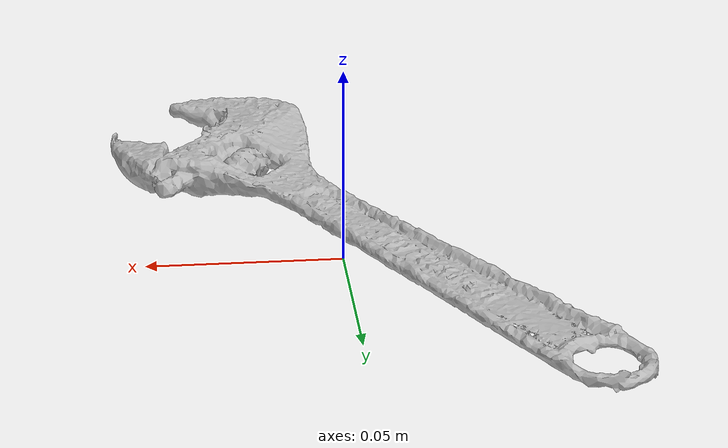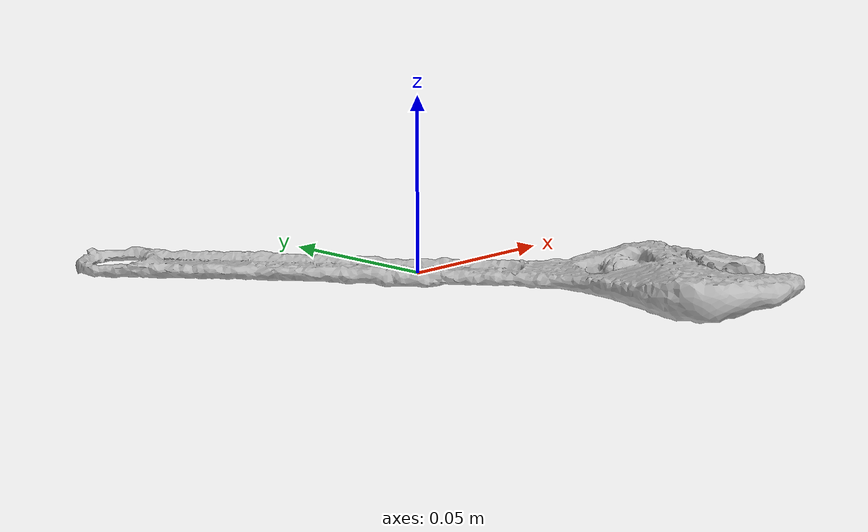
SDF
<?xml version='1.0'?>
<sdf version="1.4">
  <model name="adjustable_wrench">
    <static>false</static>
    <link name="link">
      <inertial>
        <pose>0.01450146241685899 -0.049664842094331994 0.004250780997626008 -2.1210410034214613 -1.5340779965528406 1.05767233743121</pose>
        <mass>1.9821730387476e-05</mass>
        <inertia>
          <ixx>4.68812164277712e-08</ixx>
          <ixy>-9.127291778619243e-25</ixy>
          <ixz>-1.3817253032961068e-24</ixz>
          <iyy>4.282249507787252e-08</iyy>
          <iyz>-8.533346851393124e-24</iyz>
          <izz>4.257478965991322e-09</izz>
        </inertia>
      </inertial>
      <collision name="collision">
        <geometry>
          <mesh>
            <!-- Use a downsampled mesh for collisions -->
            <uri>model://042_adjustable_wrench/google_16k/042_adjustable_wrench.obj</uri>
            </mesh>
        </geometry>
        <surface>
          <friction>
            <ode>
              <mu>0.9</mu>
              <mu2>0.9</mu2>
            </ode>
          </friction>
          <contact>
            <ode>
              <kp>1000000000000.0</kp>
              <kd>1</kd>
              <min_depth>0.0001</min_depth>
              <max_vel>0.01</max_vel>
            </ode>
          </contact>
          <bounce>
            <restitution_coefficient>0.1</restitution_coefficient>
            <threshold>1000.0</threshold>
          </bounce>
        </surface>
      </collision>
      <visual name="visual">
        <geometry>
          <mesh>
            <uri>model://042_adjustable_wrench/google_16k/042_adjustable_wrench.dae</uri>
            </mesh>
        </geometry>
      </visual>
    </link>
  </model>
</sdf>
